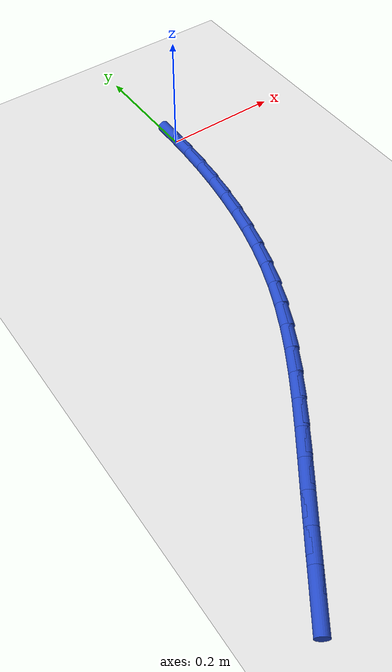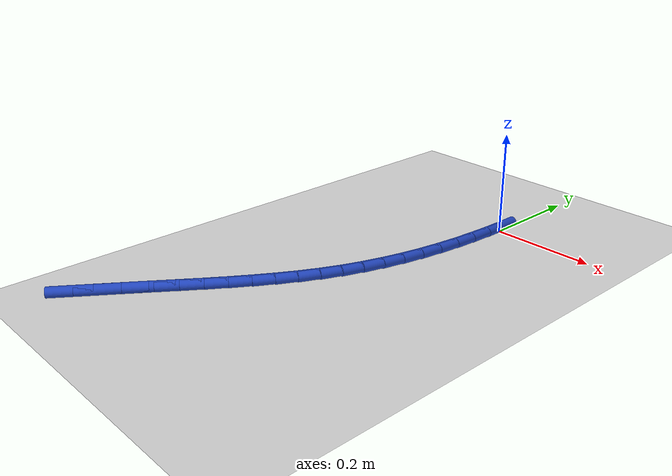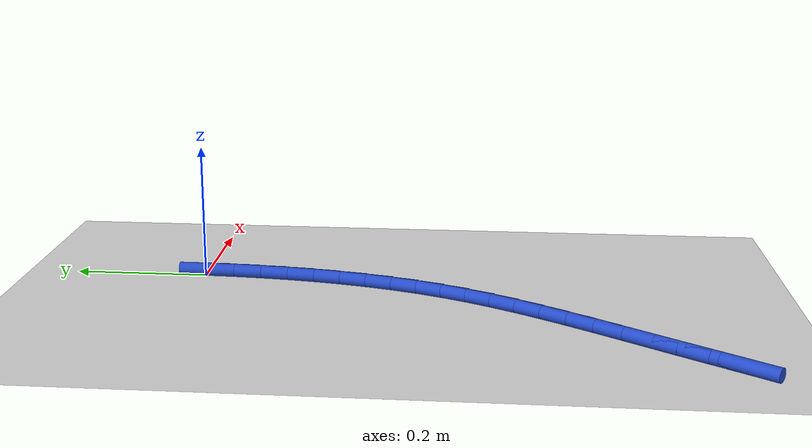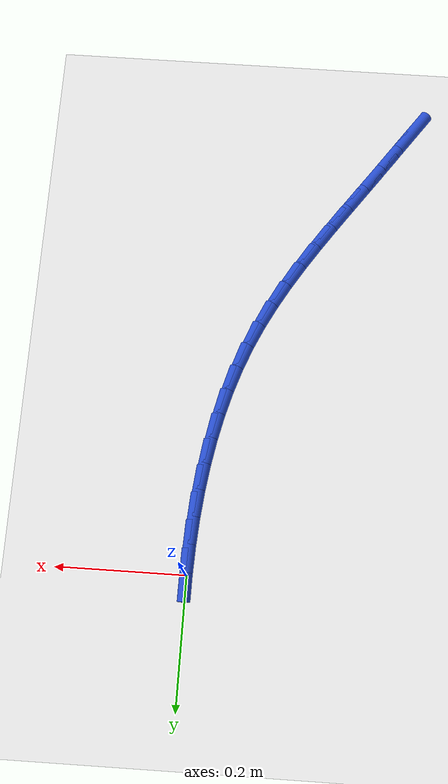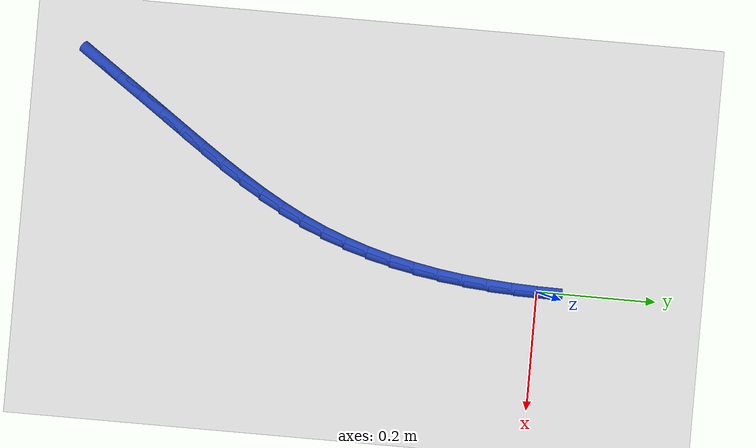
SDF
<sdf version="1.6">
 <world name="default">
  <model name="ground_plane">
   <static>1</static>
   <link name="link">
    <collision name="collision">
     <geometry><plane><normal>0 0 1</normal><size>100 100</size></plane></geometry>
     <surface><friction><ode><mu>100</mu><mu2>50</mu2></ode></friction></surface>
    </collision>
    <visual name="visual">
     <cast_shadows>0</cast_shadows>
     <geometry><plane><normal>0 0 1</normal><size>100 100</size></plane></geometry>
     <material>
      <script><uri>file://media/materials/scripts/gazebo.material</uri><name>Gazebo/WhiteGlow</name></script>
     </material>
    </visual>
   </link>
  </model>
  <model name="line">
   <link name="link_150">
    <pose>-0.31979567676156745 -0.7574898884231884 0.01 0 1.57 0.9582658890882805</pose>
    <collision name="collision">
     <geometry><cylinder><radius>0.01</radius><length>0.08</length></cylinder></geometry>
    </collision>
    <visual name="visual">
     <material>
      <script><name>Gazebo/Blue</name><uri>file://media/materials/scripts/gazebo.material</uri></script>
     </material>
     <geometry><cylinder><radius>0.01</radius><length>0.08</length></cylinder></geometry>
    </visual>
   </link>
   <link name="link_151">
    <pose>-0.2930233980144554 -0.7193902997934023 0.01 0 1.57 0.9597808275533974</pose>
    <collision name="collision">
     <geometry><cylinder><radius>0.01</radius><length>0.08</length></cylinder></geometry>
    </collision>
    <visual name="visual">
     <material>
      <script><name>Gazebo/Blue</name><uri>file://media/materials/scripts/gazebo.material</uri></script>
     </material>
     <geometry><cylinder><radius>0.01</radius><length>0.08</length></cylinder></geometry>
    </visual>
   </link>
   <link name="link_152">
    <pose>-0.26674012190815494 -0.6818658933144948 0.01 0 1.57 0.9554640950660321</pose>
    <collision name="collision">
     <geometry><cylinder><radius>0.01</radius><length>0.08</length></cylinder></geometry>
    </collision>
    <visual name="visual">
     <material>
      <script><name>Gazebo/Blue</name><uri>file://media/materials/scripts/gazebo.material</uri></script>
     </material>
     <geometry><cylinder><radius>0.01</radius><length>0.08</length></cylinder></geometry>
    </visual>
   </link>
   <link name="link_153">
    <pose>-0.24091129783751286 -0.6453269901617756 0.01 0 1.57 0.9534998391905497</pose>
    <collision name="collision">
     <geometry><cylinder><radius>0.01</radius><length>0.08</length></cylinder></geometry>
    </collision>
    <visual name="visual">
     <material>
      <script><name>Gazebo/Blue</name><uri>file://media/materials/scripts/gazebo.material</uri></script>
     </material>
     <geometry><cylinder><radius>0.01</radius><length>0.08</length></cylinder></geometry>
    </visual>
   </link>
   <link name="link_154">
    <pose>-0.21564436606677542 -0.6097315130890536 0.01 0 1.57 0.9582712813381893</pose>
    <collision name="collision">
     <geometry><cylinder><radius>0.01</radius><length>0.08</length></cylinder></geometry>
    </collision>
    <visual name="visual">
     <material>
      <script><name>Gazebo/Blue</name><uri>file://media/materials/scripts/gazebo.material</uri></script>
     </material>
     <geometry><cylinder><radius>0.01</radius><length>0.08</length></cylinder></geometry>
    </visual>
   </link>
   <link name="link_155">
    <pose>-0.19111425729735435 -0.5748223529444194 0.01 0 1.57 0.9702424787899154</pose>
    <collision name="collision">
     <geometry><cylinder><radius>0.01</radius><length>0.08</length></cylinder></geometry>
    </collision>
    <visual name="visual">
     <material>
      <script><name>Gazebo/Blue</name><uri>file://media/materials/scripts/gazebo.material</uri></script>
     </material>
     <geometry><cylinder><radius>0.01</radius><length>0.08</length></cylinder></geometry>
    </visual>
   </link>
   <link name="link_156">
    <pose>-0.16749631235873746 -0.5403410938631121 0.01 0 1.57 0.9897682954163167</pose>
    <collision name="collision">
     <geometry><cylinder><radius>0.01</radius><length>0.08</length></cylinder></geometry>
    </collision>
    <visual name="visual">
     <material>
      <script><name>Gazebo/Blue</name><uri>file://media/materials/scripts/gazebo.material</uri></script>
     </material>
     <geometry><cylinder><radius>0.01</radius><length>0.08</length></cylinder></geometry>
    </visual>
   </link>
   <link name="link_157">
    <pose>-0.14496587208041278 -0.5060293199803702 0.01 0 1.57 1.0170791522761489</pose>
    <collision name="collision">
     <geometry><cylinder><radius>0.01</radius><length>0.08</length></cylinder></geometry>
    </collision>
    <visual name="visual">
     <material>
      <script><name>Gazebo/Blue</name><uri>file://media/materials/scripts/gazebo.material</uri></script>
     </material>
     <geometry><cylinder><radius>0.01</radius><length>0.08</length></cylinder></geometry>
    </visual>
   </link>
   <link name="link_158">
    <pose>-0.12369827729186765 -0.4716286154314314 0.01 0 1.57 1.0522279298262824</pose>
    <collision name="collision">
     <geometry><cylinder><radius>0.01</radius><length>0.08</length></cylinder></geometry>
    </collision>
    <visual name="visual">
     <material>
      <script><name>Gazebo/Blue</name><uri>file://media/materials/scripts/gazebo.material</uri></script>
     </material>
     <geometry><cylinder><radius>0.01</radius><length>0.08</length></cylinder></geometry>
    </visual>
   </link>
   <link name="link_159">
    <pose>-0.10386886882259089 -0.43688056435153644 0.01 0 1.57 1.0950271046206592</pose>
    <collision name="collision">
     <geometry><cylinder><radius>0.01</radius><length>0.08</length></cylinder></geometry>
    </collision>
    <visual name="visual">
     <material>
      <script><name>Gazebo/Blue</name><uri>file://media/materials/scripts/gazebo.material</uri></script>
     </material>
     <geometry><cylinder><radius>0.01</radius><length>0.08</length></cylinder></geometry>
    </visual>
   </link>
   <link name="link_160">
    <pose>-0.08565298750206995 -0.401526750875923 0.01 0 1.57 1.1449862839736102</pose>
    <collision name="collision">
     <geometry><cylinder><radius>0.01</radius><length>0.08</length></cylinder></geometry>
    </collision>
    <visual name="visual">
     <material>
      <script><name>Gazebo/Blue</name><uri>file://media/materials/scripts/gazebo.material</uri></script>
     </material>
     <geometry><cylinder><radius>0.01</radius><length>0.08</length></cylinder></geometry>
    </visual>
   </link>
   <link name="link_161">
    <pose>-0.06922597415979265 -0.3653087591398297 0.01 0 1.57 1.2001666800416475</pose>
    <collision name="collision">
     <geometry><cylinder><radius>0.01</radius><length>0.08</length></cylinder></geometry>
    </collision>
    <visual name="visual">
     <material>
      <script><name>Gazebo/Blue</name><uri>file://media/materials/scripts/gazebo.material</uri></script>
     </material>
     <geometry><cylinder><radius>0.01</radius><length>0.08</length></cylinder></geometry>
    </visual>
   </link>
   <link name="link_162">
    <pose>-0.05473230135410376 -0.3280104285392037 0.01 0 1.57 1.253698345429259</pose>
    <collision name="collision">
     <geometry><cylinder><radius>0.01</radius><length>0.08</length></cylinder></geometry>
    </collision>
    <visual name="visual">
     <material>
      <script><name>Gazebo/Blue</name><uri>file://media/materials/scripts/gazebo.material</uri></script>
     </material>
     <geometry><cylinder><radius>0.01</radius><length>0.08</length></cylinder></geometry>
    </visual>
   </link>
   <link name="link_163">
    <pose>-0.04214402317158095 -0.28965162035283815 0.01 0 1.57 1.3034152092305116</pose>
    <collision name="collision">
     <geometry><cylinder><radius>0.01</radius><length>0.08</length></cylinder></geometry>
    </collision>
    <visual name="visual">
     <material>
      <script><name>Gazebo/Blue</name><uri>file://media/materials/scripts/gazebo.material</uri></script>
     </material>
     <geometry><cylinder><radius>0.01</radius><length>0.08</length></cylinder></geometry>
    </visual>
   </link>
   <link name="link_164">
    <pose>-0.031373356170658444 -0.25033410683990437 0.01 0 1.57 1.3494424081377823</pose>
    <collision name="collision">
     <geometry><cylinder><radius>0.01</radius><length>0.08</length></cylinder></geometry>
    </collision>
    <visual name="visual">
     <material>
      <script><name>Gazebo/Blue</name><uri>file://media/materials/scripts/gazebo.material</uri></script>
     </material>
     <geometry><cylinder><radius>0.01</radius><length>0.08</length></cylinder></geometry>
    </visual>
   </link>
   <link name="link_165">
    <pose>-0.02233245769100166 -0.21015974132353846 0.01 0 1.57 1.3919535974329937</pose>
    <collision name="collision">
     <geometry><cylinder><radius>0.01</radius><length>0.08</length></cylinder></geometry>
    </collision>
    <visual name="visual">
     <material>
      <script><name>Gazebo/Blue</name><uri>file://media/materials/scripts/gazebo.material</uri></script>
     </material>
     <geometry><cylinder><radius>0.01</radius><length>0.08</length></cylinder></geometry>
    </visual>
   </link>
   <link name="link_166">
    <pose>-0.014933485072276192 -0.16923037712687664 0.01 0 1.57 1.431149969247576</pose>
    <collision name="collision">
     <geometry><cylinder><radius>0.01</radius><length>0.08</length></cylinder></geometry>
    </collision>
    <visual name="visual">
     <material>
      <script><name>Gazebo/Blue</name><uri>file://media/materials/scripts/gazebo.material</uri></script>
     </material>
     <geometry><cylinder><radius>0.01</radius><length>0.08</length></cylinder></geometry>
    </visual>
   </link>
   <link name="link_167">
    <pose>-0.009088595654147671 -0.12764786757305555 0.01 0 1.57 1.467245564381338</pose>
    <collision name="collision">
     <geometry><cylinder><radius>0.01</radius><length>0.08</length></cylinder></geometry>
    </collision>
    <visual name="visual">
     <material>
      <script><name>Gazebo/Blue</name><uri>file://media/materials/scripts/gazebo.material</uri></script>
     </material>
     <geometry><cylinder><radius>0.01</radius><length>0.08</length></cylinder></geometry>
    </visual>
   </link>
   <link name="link_168">
    <pose>-0.004709946776281658 -0.0855140659852108 0.01 0 1.57 1.500456417777174</pose>
    <collision name="collision">
     <geometry><cylinder><radius>0.01</radius><length>0.08</length></cylinder></geometry>
    </collision>
    <visual name="visual">
     <material>
      <script><name>Gazebo/Blue</name><uri>file://media/materials/scripts/gazebo.material</uri></script>
     </material>
     <geometry><cylinder><radius>0.01</radius><length>0.08</length></cylinder></geometry>
    </visual>
   </link>
   <link name="link_169">
    <pose>-0.001709695778343929 -0.042930825686480455 0.01 0 1.57 1.5309929277390268</pose>
    <collision name="collision">
     <geometry><cylinder><radius>0.01</radius><length>0.08</length></cylinder></geometry>
    </collision>
    <visual name="visual">
     <material>
      <script><name>Gazebo/Blue</name><uri>file://media/materials/scripts/gazebo.material</uri></script>
     </material>
     <geometry><cylinder><radius>0.01</radius><length>0.08</length></cylinder></geometry>
    </visual>
   </link>
   <link name="link_170">
    <pose>-8.673617379884035e-18 -2.0816681711721685e-16 0.01 0 1.57 1.559054771955591</pose>
    <collision name="collision">
     <geometry><cylinder><radius>0.01</radius><length>0.08</length></cylinder></geometry>
    </collision>
    <visual name="visual">
     <material>
      <script><name>Gazebo/Blue</name><uri>file://media/materials/scripts/gazebo.material</uri></script>
     </material>
     <geometry><cylinder><radius>0.01</radius><length>0.08</length></cylinder></geometry>
    </visual>
   </link>
  </model>
 </world>
</sdf>
